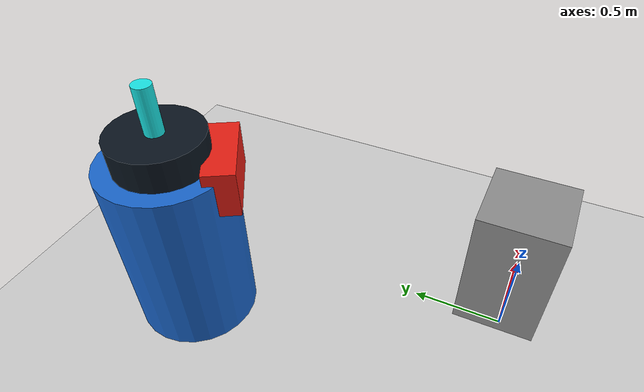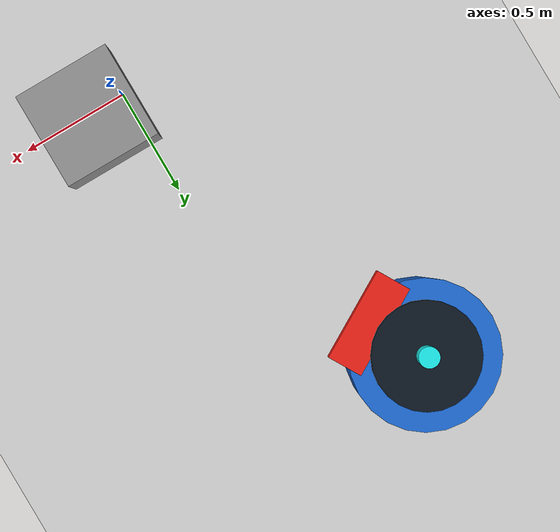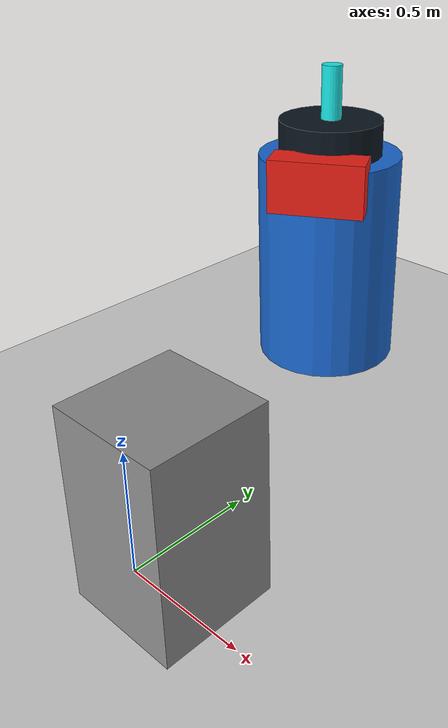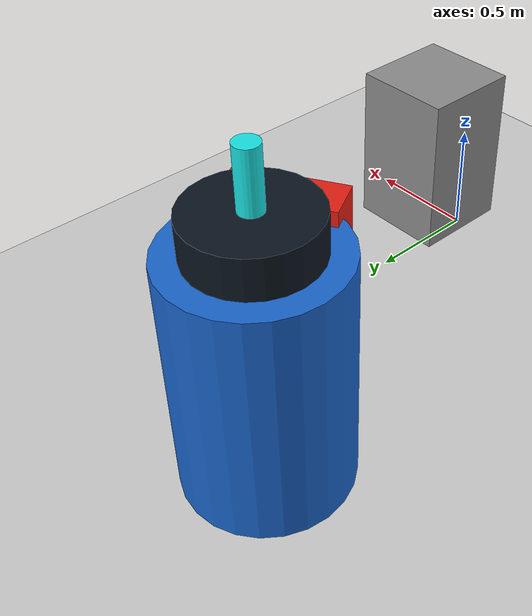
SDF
<sdf version="1.7">
 <world name="default">
  <plugin name="socnav_plugin" filename="libSocNavPlugin.so">
   <robot_name>robot</robot_name>
   <trajectory_file>/home/hunav_gz_classic_ws/SocNav3_trajectories/src6/000003871.json</trajectory_file>
   <human_slots>1</human_slots>
   <goal_angle_mesh>
    <angle_threshold>3.1266707481</angle_threshold>
    <uri>/home/hunav_gz_classic_ws/src/socnav_gazebo_reproducer/meshes/000003871_goal_angle_00.stl</uri>
   </goal_angle_mesh>
  </plugin>
  <light name="sun" type="directional">
   <pose>0 0 10 0 -0 0</pose>
   <diffuse>0.8 0.8 0.8 1</diffuse>
   <specular>0.2 0.2 0.2 1</specular>
   <attenuation>
    <range>1000</range>
    <constant>0.9</constant>
    <linear>0.01</linear>
    <quadratic>0.001</quadratic>
   </attenuation>
   <direction>-0.5 0.1 -0.9</direction>
   <spot><inner_angle>0</inner_angle><outer_angle>0</outer_angle><falloff>0</falloff></spot>
  </light>
  <model name="ground_plane">
   <static>1</static>
   <link name="link">
    <collision name="collision">
     <geometry><plane><normal>0 0 1</normal><size>100 100</size></plane></geometry>
     <surface><friction><ode><mu>100</mu><mu2>50</mu2></ode></friction></surface>
    </collision>
    <visual name="visual">
     <cast_shadows>0</cast_shadows>
     <geometry><plane><normal>0 0 1</normal><size>100 100</size></plane></geometry>
     <material>
      <script><uri>file://media/materials/scripts/kitchen.material</uri><name>Kitchen/CounterTop_H</name></script>
     </material>
    </visual>
   </link>
  </model>
  <gravity>0 0 -9.8</gravity>
  <magnetic_field>6e-06 2.3e-05 -4.2e-05</magnetic_field>
  <atmosphere type="adiabatic"/>
  <physics type="ode">
   <max_step_size>0.001</max_step_size>
   <real_time_factor>1</real_time_factor>
   <real_time_update_rate>1000</real_time_update_rate>
  </physics>
  <scene><ambient>0.4 0.4 0.4 1</ambient><background>0.7 0.7 0.7 1</background><shadows>1</shadows></scene>
  <audio><device>default</device></audio>
  <spherical_coordinates>
   <surface_model>EARTH_WGS84</surface_model>
   <latitude_deg>0</latitude_deg>
   <longitude_deg>0</longitude_deg>
   <elevation>0</elevation>
   <heading_deg>0</heading_deg>
  </spherical_coordinates>
  <model name="robot">
   <pose>-0.5573281749874026 1.670422184811596 0.5 0 0 -1.0499285266821192</pose>
   <link name="link">
    <collision name="collision">
     <geometry><cylinder><radius>0.3315779458874009</radius><length>1.0</length></cylinder></geometry>
    </collision>
    <visual name="visual">
     <geometry><cylinder><radius>0.3315779458874009</radius><length>1.0</length></cylinder></geometry>
     <material><ambient>0.1 0.4 0.8 1</ambient><diffuse>0.1 0.4 0.8 1</diffuse></material>
    </visual>
    <visual name="robot_top">
     <pose>0 0 0.58 0 0 0</pose>
     <geometry><cylinder><radius>0.23873612103892866</radius><length>0.16</length></cylinder></geometry>
     <material><ambient>0.04 0.08 0.12 1</ambient><diffuse>0.04 0.08 0.12 1</diffuse></material>
    </visual>
    <visual name="robot_front">
     <pose>0.27852547454541676 0 0.44 0 0 0</pose>
     <geometry><box><size>0.15915741402595243 0.42441977073587317 0.24</size></box></geometry>
     <material><ambient>0.9 0.12 0.08 1</ambient><diffuse>0.9 0.12 0.08 1</diffuse></material>
    </visual>
    <visual name="robot_sensor">
     <pose>0 0 0.78 0 0 0</pose>
     <geometry><cylinder><radius>0.046420912424236134</radius><length>0.24</length></cylinder></geometry>
     <material><ambient>0.1 0.9 0.9 1</ambient><diffuse>0.1 0.9 0.9 1</diffuse></material>
    </visual>
   </link>
  </model>
  <model name="static_object_2">
   <static>true</static>
   <pose>0.1715689227933499 0.03464131041855434 0.375 0 0 0</pose>
   <link name="link">
    <collision name="collision">
     <geometry><box><size>0.4524788193714772 0.4524788193714772 0.75</size></box></geometry>
    </collision>
    <visual name="visual">
     <geometry><box><size>0.4524788193714772 0.4524788193714772 0.75</size></box></geometry>
     <material><ambient>0.55 0.55 0.55 1</ambient><diffuse>0.55 0.55 0.55 1</diffuse></material>
    </visual>
   </link>
  </model>
  <model name="simple_world_test"><static>1</static></model>
 </world>
</sdf>
